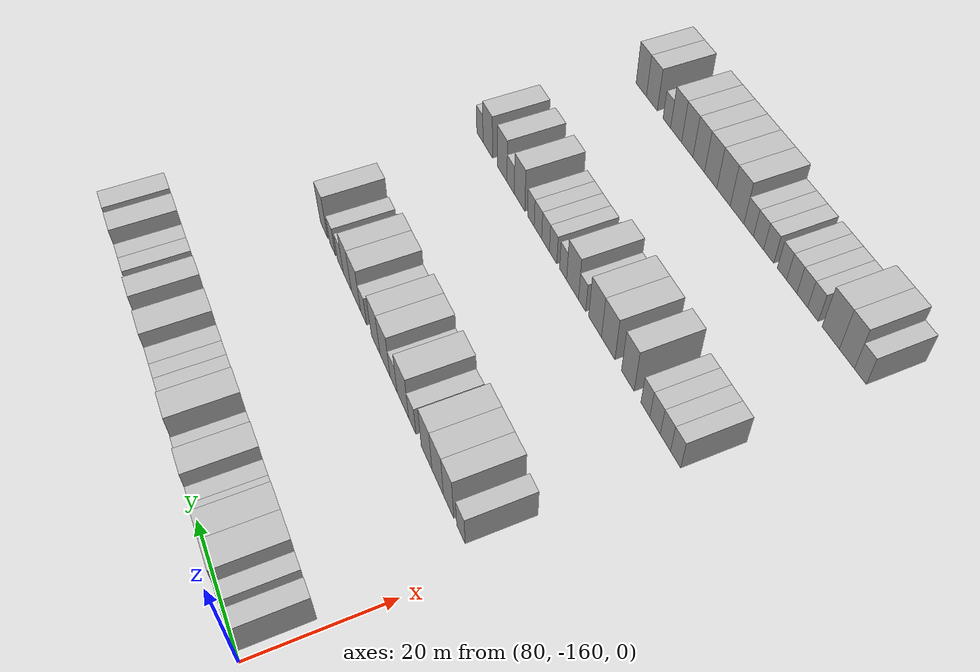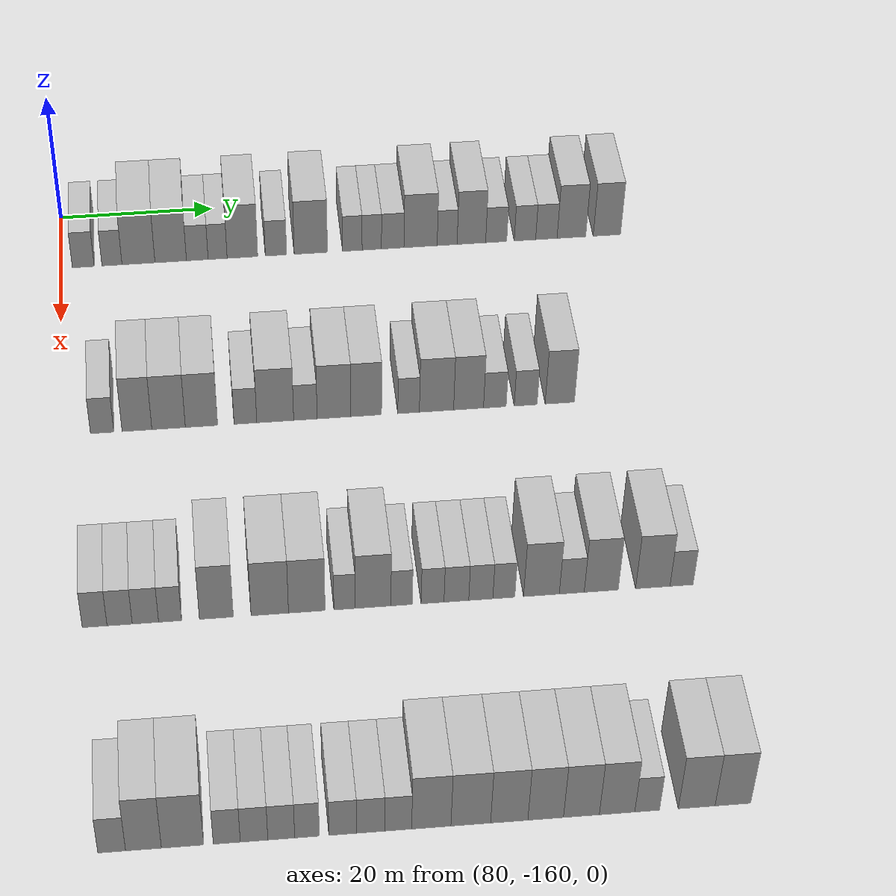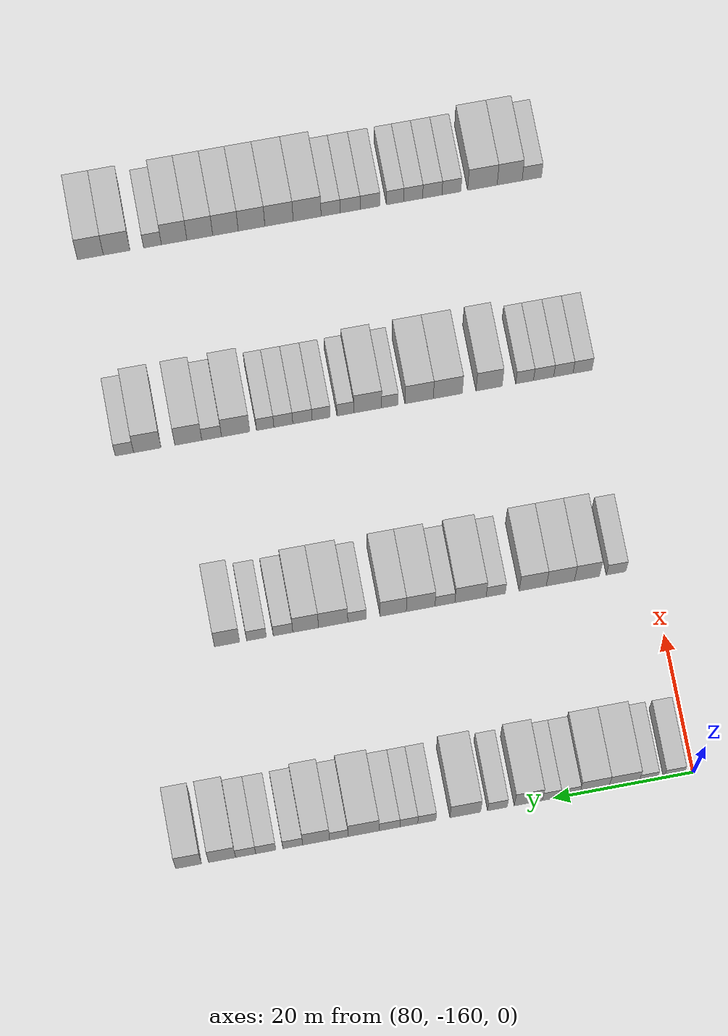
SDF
<sdf version="1.6">
 <world name="default">
  <model name="building_536">
   <static>1</static>
   <pose>85.0000 -157.1456 0 0.000000 0.000000 0.000000</pose>
   <link name="link">
    <pose>0 0 3.00 0 0 0</pose>
    <collision name="collision"><geometry><box><size>10.0000 2.8331 6.0000</size></box></geometry></collision>
    <visual name="visual">
     <cast_shadows>0</cast_shadows>
     <geometry><box><size>10.0000 2.8331 6.0000</size></box></geometry>
     <material>
      <script>
       <uri>model://HANNAS_wall/materials/scripts</uri>
       <uri>model://HANNAS_wall/materials/textures</uri>
       <name>vrc/HANNAS_wall</name>
      </script>
     </material>
    </visual>
   </link>
  </model>
  <model name="building_537">
   <static>1</static>
   <pose>85.0000 -153.4284 0 0.000000 0.000000 0.000000</pose>
   <link name="link">
    <pose>0 0 3.00 0 0 0</pose>
    <collision name="collision"><geometry><box><size>10.0000 2.6014 6.0000</size></box></geometry></collision>
    <visual name="visual">
     <cast_shadows>0</cast_shadows>
     <geometry><box><size>10.0000 2.6014 6.0000</size></box></geometry>
     <material>
      <script>
       <uri>model://HANNAS_wall/materials/scripts</uri>
       <uri>model://HANNAS_wall/materials/textures</uri>
       <name>vrc/HANNAS_wall</name>
      </script>
     </material>
    </visual>
   </link>
  </model>
  <model name="building_538">
   <static>1</static>
   <pose>85.0000 -149.9869 0 0.000000 0.000000 0.000000</pose>
   <link name="link">
    <pose>0 0 4.50 0 0 0</pose>
    <collision name="collision"><geometry><box><size>10.0000 4.2815 9.0000</size></box></geometry></collision>
    <visual name="visual">
     <cast_shadows>0</cast_shadows>
     <geometry><box><size>10.0000 4.2815 9.0000</size></box></geometry>
     <material>
      <script>
       <uri>model://HANNAS_wall/materials/scripts</uri>
       <uri>model://HANNAS_wall/materials/textures</uri>
       <name>vrc/HANNAS_wall</name>
      </script>
     </material>
    </visual>
   </link>
  </model>
  <model name="building_539">
   <static>1</static>
   <pose>85.0000 -145.7979 0 0.000000 0.000000 0.000000</pose>
   <link name="link">
    <pose>0 0 4.50 0 0 0</pose>
    <collision name="collision"><geometry><box><size>10.0000 4.0966 9.0000</size></box></geometry></collision>
    <visual name="visual">
     <cast_shadows>0</cast_shadows>
     <geometry><box><size>10.0000 4.0966 9.0000</size></box></geometry>
     <material>
      <script>
       <uri>model://HANNAS_wall/materials/scripts</uri>
       <uri>model://HANNAS_wall/materials/textures</uri>
       <name>vrc/HANNAS_wall</name>
      </script>
     </material>
    </visual>
   </link>
  </model>
  <model name="building_540">
   <static>1</static>
   <pose>85.0000 -142.3402 0 0.000000 0.000000 0.000000</pose>
   <link name="link">
    <pose>0 0 3.00 0 0 0</pose>
    <collision name="collision"><geometry><box><size>10.0000 2.8188 6.0000</size></box></geometry></collision>
    <visual name="visual">
     <cast_shadows>0</cast_shadows>
     <geometry><box><size>10.0000 2.8188 6.0000</size></box></geometry>
     <material>
      <script>
       <uri>model://HANNAS_wall/materials/scripts</uri>
       <uri>model://HANNAS_wall/materials/textures</uri>
       <name>vrc/HANNAS_wall</name>
      </script>
     </material>
    </visual>
   </link>
  </model>
  <model name="building_541">
   <static>1</static>
   <pose>85.0000 -139.6910 0 0.000000 0.000000 0.000000</pose>
   <link name="link">
    <pose>0 0 3.00 0 0 0</pose>
    <collision name="collision"><geometry><box><size>10.0000 2.4795 6.0000</size></box></geometry></collision>
    <visual name="visual">
     <cast_shadows>0</cast_shadows>
     <geometry><box><size>10.0000 2.4795 6.0000</size></box></geometry>
     <material>
      <script>
       <uri>model://HANNAS_wall/materials/scripts</uri>
       <uri>model://HANNAS_wall/materials/textures</uri>
       <name>vrc/HANNAS_wall</name>
      </script>
     </material>
    </visual>
   </link>
  </model>
  <model name="building_542">
   <static>1</static>
   <pose>85.0000 -136.4554 0 0.000000 0.000000 0.000000</pose>
   <link name="link">
    <pose>0 0 4.50 0 0 0</pose>
    <collision name="collision"><geometry><box><size>10.0000 3.9917 9.0000</size></box></geometry></collision>
    <visual name="visual">
     <cast_shadows>0</cast_shadows>
     <geometry><box><size>10.0000 3.9917 9.0000</size></box></geometry>
     <material>
      <script>
       <uri>model://HANNAS_wall/materials/scripts</uri>
       <uri>model://HANNAS_wall/materials/textures</uri>
       <name>vrc/HANNAS_wall</name>
      </script>
     </material>
    </visual>
   </link>
  </model>
  <model name="building_543">
   <static>1</static>
   <pose>85.0000 -132.0714 0 0.000000 0.000000 0.000000</pose>
   <link name="link">
    <pose>0 0 3.00 0 0 0</pose>
    <collision name="collision"><geometry><box><size>10.0000 2.7764 6.0000</size></box></geometry></collision>
    <visual name="visual">
     <cast_shadows>0</cast_shadows>
     <geometry><box><size>10.0000 2.7764 6.0000</size></box></geometry>
     <material>
      <script>
       <uri>model://HANNAS_wall/materials/scripts</uri>
       <uri>model://HANNAS_wall/materials/textures</uri>
       <name>vrc/HANNAS_wall</name>
      </script>
     </material>
    </visual>
   </link>
  </model>
  <model name="building_544">
   <static>1</static>
   <pose>85.0000 -127.5112 0 0.000000 0.000000 0.000000</pose>
   <link name="link">
    <pose>0 0 4.50 0 0 0</pose>
    <collision name="collision"><geometry><box><size>10.0000 4.3439 9.0000</size></box></geometry></collision>
    <visual name="visual">
     <cast_shadows>0</cast_shadows>
     <geometry><box><size>10.0000 4.3439 9.0000</size></box></geometry>
     <material>
      <script>
       <uri>model://HANNAS_wall/materials/scripts</uri>
       <uri>model://HANNAS_wall/materials/textures</uri>
       <name>vrc/HANNAS_wall</name>
      </script>
     </material>
    </visual>
   </link>
  </model>
  <model name="building_545">
   <static>1</static>
   <pose>85.0000 -122.0575 0 0.000000 0.000000 0.000000</pose>
   <link name="link">
    <pose>0 0 3.00 0 0 0</pose>
    <collision name="collision"><geometry><box><size>10.0000 2.5634 6.0000</size></box></geometry></collision>
    <visual name="visual">
     <cast_shadows>0</cast_shadows>
     <geometry><box><size>10.0000 2.5634 6.0000</size></box></geometry>
     <material>
      <script>
       <uri>model://HANNAS_wall/materials/scripts</uri>
       <uri>model://HANNAS_wall/materials/textures</uri>
       <name>vrc/HANNAS_wall</name>
      </script>
     </material>
    </visual>
   </link>
  </model>
  <model name="building_546">
   <static>1</static>
   <pose>85.0000 -119.5064 0 0.000000 0.000000 0.000000</pose>
   <link name="link">
    <pose>0 0 3.00 0 0 0</pose>
    <collision name="collision"><geometry><box><size>10.0000 2.5390 6.0000</size></box></geometry></collision>
    <visual name="visual">
     <cast_shadows>0</cast_shadows>
     <geometry><box><size>10.0000 2.5390 6.0000</size></box></geometry>
     <material>
      <script>
       <uri>model://HANNAS_wall/materials/scripts</uri>
       <uri>model://HANNAS_wall/materials/textures</uri>
       <name>vrc/HANNAS_wall</name>
      </script>
     </material>
    </visual>
   </link>
  </model>
  <model name="building_547">
   <static>1</static>
   <pose>85.0000 -116.7574 0 0.000000 0.000000 0.000000</pose>
   <link name="link">
    <pose>0 0 3.00 0 0 0</pose>
    <collision name="collision"><geometry><box><size>10.0000 2.9590 6.0000</size></box></geometry></collision>
    <visual name="visual">
     <cast_shadows>0</cast_shadows>
     <geometry><box><size>10.0000 2.9590 6.0000</size></box></geometry>
     <material>
      <script>
       <uri>model://HANNAS_wall/materials/scripts</uri>
       <uri>model://HANNAS_wall/materials/textures</uri>
       <name>vrc/HANNAS_wall</name>
      </script>
     </material>
    </visual>
   </link>
  </model>
  <model name="building_548">
   <static>1</static>
   <pose>85.0000 -113.0890 0 0.000000 0.000000 0.000000</pose>
   <link name="link">
    <pose>0 0 4.50 0 0 0</pose>
    <collision name="collision"><geometry><box><size>10.0000 4.3778 9.0000</size></box></geometry></collision>
    <visual name="visual">
     <cast_shadows>0</cast_shadows>
     <geometry><box><size>10.0000 4.3778 9.0000</size></box></geometry>
     <material>
      <script>
       <uri>model://HANNAS_wall/materials/scripts</uri>
       <uri>model://HANNAS_wall/materials/textures</uri>
       <name>vrc/HANNAS_wall</name>
      </script>
     </material>
    </visual>
   </link>
  </model>
  <model name="building_549">
   <static>1</static>
   <pose>85.0000 -109.5855 0 0.000000 0.000000 0.000000</pose>
   <link name="link">
    <pose>0 0 3.00 0 0 0</pose>
    <collision name="collision"><geometry><box><size>10.0000 2.6292 6.0000</size></box></geometry></collision>
    <visual name="visual">
     <cast_shadows>0</cast_shadows>
     <geometry><box><size>10.0000 2.6292 6.0000</size></box></geometry>
     <material>
      <script>
       <uri>model://HANNAS_wall/materials/scripts</uri>
       <uri>model://HANNAS_wall/materials/textures</uri>
       <name>vrc/HANNAS_wall</name>
      </script>
     </material>
    </visual>
   </link>
  </model>
  <model name="building_550">
   <static>1</static>
   <pose>85.0000 -106.3817 0 0.000000 0.000000 0.000000</pose>
   <link name="link">
    <pose>0 0 4.50 0 0 0</pose>
    <collision name="collision"><geometry><box><size>10.0000 3.7782 9.0000</size></box></geometry></collision>
    <visual name="visual">
     <cast_shadows>0</cast_shadows>
     <geometry><box><size>10.0000 3.7782 9.0000</size></box></geometry>
     <material>
      <script>
       <uri>model://HANNAS_wall/materials/scripts</uri>
       <uri>model://HANNAS_wall/materials/textures</uri>
       <name>vrc/HANNAS_wall</name>
      </script>
     </material>
    </visual>
   </link>
  </model>
  <model name="building_551">
   <static>1</static>
   <pose>85.0000 -103.0970 0 0.000000 0.000000 0.000000</pose>
   <link name="link">
    <pose>0 0 3.00 0 0 0</pose>
    <collision name="collision"><geometry><box><size>10.0000 2.7912 6.0000</size></box></geometry></collision>
    <visual name="visual">
     <cast_shadows>0</cast_shadows>
     <geometry><box><size>10.0000 2.7912 6.0000</size></box></geometry>
     <material>
      <script>
       <uri>model://HANNAS_wall/materials/scripts</uri>
       <uri>model://HANNAS_wall/materials/textures</uri>
       <name>vrc/HANNAS_wall</name>
      </script>
     </material>
    </visual>
   </link>
  </model>
  <model name="building_552">
   <static>1</static>
   <pose>85.0000 -99.2814 0 0.000000 0.000000 0.000000</pose>
   <link name="link">
    <pose>0 0 3.00 0 0 0</pose>
    <collision name="collision"><geometry><box><size>10.0000 2.8399 6.0000</size></box></geometry></collision>
    <visual name="visual">
     <cast_shadows>0</cast_shadows>
     <geometry><box><size>10.0000 2.8399 6.0000</size></box></geometry>
     <material>
      <script>
       <uri>model://HANNAS_wall/materials/scripts</uri>
       <uri>model://HANNAS_wall/materials/textures</uri>
       <name>vrc/HANNAS_wall</name>
      </script>
     </material>
    </visual>
   </link>
  </model>
  <model name="building_553">
   <static>1</static>
   <pose>85.0000 -96.4406 0 0.000000 0.000000 0.000000</pose>
   <link name="link">
    <pose>0 0 3.00 0 0 0</pose>
    <collision name="collision"><geometry><box><size>10.0000 2.8418 6.0000</size></box></geometry></collision>
    <visual name="visual">
     <cast_shadows>0</cast_shadows>
     <geometry><box><size>10.0000 2.8418 6.0000</size></box></geometry>
     <material>
      <script>
       <uri>model://HANNAS_wall/materials/scripts</uri>
       <uri>model://HANNAS_wall/materials/textures</uri>
       <name>vrc/HANNAS_wall</name>
      </script>
     </material>
    </visual>
   </link>
  </model>
  <model name="building_554">
   <static>1</static>
   <pose>85.0000 -93.1189 0 0.000000 0.000000 0.000000</pose>
   <link name="link">
    <pose>0 0 4.50 0 0 0</pose>
    <collision name="collision"><geometry><box><size>10.0000 3.8016 9.0000</size></box></geometry></collision>
    <visual name="visual">
     <cast_shadows>0</cast_shadows>
     <geometry><box><size>10.0000 3.8016 9.0000</size></box></geometry>
     <material>
      <script>
       <uri>model://HANNAS_wall/materials/scripts</uri>
       <uri>model://HANNAS_wall/materials/textures</uri>
       <name>vrc/HANNAS_wall</name>
      </script>
     </material>
    </visual>
   </link>
  </model>
  <model name="building_555">
   <static>1</static>
   <pose>85.0000 -88.4047 0 0.000000 0.000000 0.000000</pose>
   <link name="link">
    <pose>0 0 4.50 0 0 0</pose>
    <collision name="collision"><geometry><box><size>10.0000 3.6267 9.0000</size></box></geometry></collision>
    <visual name="visual">
     <cast_shadows>0</cast_shadows>
     <geometry><box><size>10.0000 3.6267 9.0000</size></box></geometry>
     <material>
      <script>
       <uri>model://HANNAS_wall/materials/scripts</uri>
       <uri>model://HANNAS_wall/materials/textures</uri>
       <name>vrc/HANNAS_wall</name>
      </script>
     </material>
    </visual>
   </link>
  </model>
  <model name="building_767">
   <static>1</static>
   <pose>115.0000 -155.0605 0 0.000000 0.000000 0.000000</pose>
   <link name="link">
    <pose>0 0 3.00 0 0 0</pose>
    <collision name="collision"><geometry><box><size>10.0000 2.8211 6.0000</size></box></geometry></collision>
    <visual name="visual">
     <cast_shadows>0</cast_shadows>
     <geometry><box><size>10.0000 2.8211 6.0000</size></box></geometry>
     <material>
      <script>
       <uri>model://HANNAS_wall/materials/scripts</uri>
       <uri>model://HANNAS_wall/materials/textures</uri>
       <name>vrc/HANNAS_wall</name>
      </script>
     </material>
    </visual>
   </link>
  </model>
  <model name="building_768">
   <static>1</static>
   <pose>115.0000 -150.8488 0 0.000000 0.000000 0.000000</pose>
   <link name="link">
    <pose>0 0 4.50 0 0 0</pose>
    <collision name="collision"><geometry><box><size>10.0000 3.6022 9.0000</size></box></geometry></collision>
    <visual name="visual">
     <cast_shadows>0</cast_shadows>
     <geometry><box><size>10.0000 3.6022 9.0000</size></box></geometry>
     <material>
      <script>
       <uri>model://HANNAS_wall/materials/scripts</uri>
       <uri>model://HANNAS_wall/materials/textures</uri>
       <name>vrc/HANNAS_wall</name>
      </script>
     </material>
    </visual>
   </link>
  </model>
  <model name="building_769">
   <static>1</static>
   <pose>115.0000 -147.0198 0 0.000000 0.000000 0.000000</pose>
   <link name="link">
    <pose>0 0 4.50 0 0 0</pose>
    <collision name="collision"><geometry><box><size>10.0000 4.0558 9.0000</size></box></geometry></collision>
    <visual name="visual">
     <cast_shadows>0</cast_shadows>
     <geometry><box><size>10.0000 4.0558 9.0000</size></box></geometry>
     <material>
      <script>
       <uri>model://HANNAS_wall/materials/scripts</uri>
       <uri>model://HANNAS_wall/materials/textures</uri>
       <name>vrc/HANNAS_wall</name>
      </script>
     </material>
    </visual>
   </link>
  </model>
  <model name="building_770">
   <static>1</static>
   <pose>115.0000 -143.0329 0 0.000000 0.000000 0.000000</pose>
   <link name="link">
    <pose>0 0 4.50 0 0 0</pose>
    <collision name="collision"><geometry><box><size>10.0000 3.9180 9.0000</size></box></geometry></collision>
    <visual name="visual">
     <cast_shadows>0</cast_shadows>
     <geometry><box><size>10.0000 3.9180 9.0000</size></box></geometry>
     <material>
      <script>
       <uri>model://HANNAS_wall/materials/scripts</uri>
       <uri>model://HANNAS_wall/materials/textures</uri>
       <name>vrc/HANNAS_wall</name>
      </script>
     </material>
    </visual>
   </link>
  </model>
  <model name="building_771">
   <static>1</static>
   <pose>115.0000 -137.6926 0 0.000000 0.000000 0.000000</pose>
   <link name="link">
    <pose>0 0 3.00 0 0 0</pose>
    <collision name="collision"><geometry><box><size>10.0000 2.7628 6.0000</size></box></geometry></collision>
    <visual name="visual">
     <cast_shadows>0</cast_shadows>
     <geometry><box><size>10.0000 2.7628 6.0000</size></box></geometry>
     <material>
      <script>
       <uri>model://HANNAS_wall/materials/scripts</uri>
       <uri>model://HANNAS_wall/materials/textures</uri>
       <name>vrc/HANNAS_wall</name>
      </script>
     </material>
    </visual>
   </link>
  </model>
  <model name="building_772">
   <static>1</static>
   <pose>115.0000 -134.0648 0 0.000000 0.000000 0.000000</pose>
   <link name="link">
    <pose>0 0 4.50 0 0 0</pose>
    <collision name="collision"><geometry><box><size>10.0000 4.4926 9.0000</size></box></geometry></collision>
    <visual name="visual">
     <cast_shadows>0</cast_shadows>
     <geometry><box><size>10.0000 4.4926 9.0000</size></box></geometry>
     <material>
      <script>
       <uri>model://HANNAS_wall/materials/scripts</uri>
       <uri>model://HANNAS_wall/materials/textures</uri>
       <name>vrc/HANNAS_wall</name>
      </script>
     </material>
    </visual>
   </link>
  </model>
  <model name="building_773">
   <static>1</static>
   <pose>115.0000 -130.3889 0 0.000000 0.000000 0.000000</pose>
   <link name="link">
    <pose>0 0 3.00 0 0 0</pose>
    <collision name="collision"><geometry><box><size>10.0000 2.8594 6.0000</size></box></geometry></collision>
    <visual name="visual">
     <cast_shadows>0</cast_shadows>
     <geometry><box><size>10.0000 2.8594 6.0000</size></box></geometry>
     <material>
      <script>
       <uri>model://HANNAS_wall/materials/scripts</uri>
       <uri>model://HANNAS_wall/materials/textures</uri>
       <name>vrc/HANNAS_wall</name>
      </script>
     </material>
    </visual>
   </link>
  </model>
  <model name="building_774">
   <static>1</static>
   <pose>115.0000 -126.8969 0 0.000000 0.000000 0.000000</pose>
   <link name="link">
    <pose>0 0 4.50 0 0 0</pose>
    <collision name="collision"><geometry><box><size>10.0000 4.1246 9.0000</size></box></geometry></collision>
    <visual name="visual">
     <cast_shadows>0</cast_shadows>
     <geometry><box><size>10.0000 4.1246 9.0000</size></box></geometry>
     <material>
      <script>
       <uri>model://HANNAS_wall/materials/scripts</uri>
       <uri>model://HANNAS_wall/materials/textures</uri>
       <name>vrc/HANNAS_wall</name>
      </script>
     </material>
    </visual>
   </link>
  </model>
  <model name="building_775">
   <static>1</static>
   <pose>115.0000 -122.9571 0 0.000000 0.000000 0.000000</pose>
   <link name="link">
    <pose>0 0 4.50 0 0 0</pose>
    <collision name="collision"><geometry><box><size>10.0000 3.7551 9.0000</size></box></geometry></collision>
    <visual name="visual">
     <cast_shadows>0</cast_shadows>
     <geometry><box><size>10.0000 3.7551 9.0000</size></box></geometry>
     <material>
      <script>
       <uri>model://HANNAS_wall/materials/scripts</uri>
       <uri>model://HANNAS_wall/materials/textures</uri>
       <name>vrc/HANNAS_wall</name>
      </script>
     </material>
    </visual>
   </link>
  </model>
  <model name="building_776">
   <static>1</static>
   <pose>115.0000 -117.7566 0 0.000000 0.000000 0.000000</pose>
   <link name="link">
    <pose>0 0 3.00 0 0 0</pose>
    <collision name="collision"><geometry><box><size>10.0000 2.6460 6.0000</size></box></geometry></collision>
    <visual name="visual">
     <cast_shadows>0</cast_shadows>
     <geometry><box><size>10.0000 2.6460 6.0000</size></box></geometry>
     <material>
      <script>
       <uri>model://HANNAS_wall/materials/scripts</uri>
       <uri>model://HANNAS_wall/materials/textures</uri>
       <name>vrc/HANNAS_wall</name>
      </script>
     </material>
    </visual>
   </link>
  </model>
  <model name="building_777">
   <static>1</static>
   <pose>115.0000 -114.3291 0 0.000000 0.000000 0.000000</pose>
   <link name="link">
    <pose>0 0 4.50 0 0 0</pose>
    <collision name="collision"><geometry><box><size>10.0000 4.2089 9.0000</size></box></geometry></collision>
    <visual name="visual">
     <cast_shadows>0</cast_shadows>
     <geometry><box><size>10.0000 4.2089 9.0000</size></box></geometry>
     <material>
      <script>
       <uri>model://HANNAS_wall/materials/scripts</uri>
       <uri>model://HANNAS_wall/materials/textures</uri>
       <name>vrc/HANNAS_wall</name>
      </script>
     </material>
    </visual>
   </link>
  </model>
  <model name="building_778">
   <static>1</static>
   <pose>115.0000 -110.3850 0 0.000000 0.000000 0.000000</pose>
   <link name="link">
    <pose>0 0 4.50 0 0 0</pose>
    <collision name="collision"><geometry><box><size>10.0000 3.6794 9.0000</size></box></geometry></collision>
    <visual name="visual">
     <cast_shadows>0</cast_shadows>
     <geometry><box><size>10.0000 3.6794 9.0000</size></box></geometry>
     <material>
      <script>
       <uri>model://HANNAS_wall/materials/scripts</uri>
       <uri>model://HANNAS_wall/materials/textures</uri>
       <name>vrc/HANNAS_wall</name>
      </script>
     </material>
    </visual>
   </link>
  </model>
  <model name="building_779">
   <static>1</static>
   <pose>115.0000 -107.1488 0 0.000000 0.000000 0.000000</pose>
   <link name="link">
    <pose>0 0 3.00 0 0 0</pose>
    <collision name="collision"><geometry><box><size>10.0000 2.7929 6.0000</size></box></geometry></collision>
    <visual name="visual">
     <cast_shadows>0</cast_shadows>
     <geometry><box><size>10.0000 2.7929 6.0000</size></box></geometry>
     <material>
      <script>
       <uri>model://HANNAS_wall/materials/scripts</uri>
       <uri>model://HANNAS_wall/materials/textures</uri>
       <name>vrc/HANNAS_wall</name>
      </script>
     </material>
    </visual>
   </link>
  </model>
  <model name="building_780">
   <static>1</static>
   <pose>115.0000 -103.3423 0 0.000000 0.000000 0.000000</pose>
   <link name="link">
    <pose>0 0 3.00 0 0 0</pose>
    <collision name="collision"><geometry><box><size>10.0000 2.8201 6.0000</size></box></geometry></collision>
    <visual name="visual">
     <cast_shadows>0</cast_shadows>
     <geometry><box><size>10.0000 2.8201 6.0000</size></box></geometry>
     <material>
      <script>
       <uri>model://HANNAS_wall/materials/scripts</uri>
       <uri>model://HANNAS_wall/materials/textures</uri>
       <name>vrc/HANNAS_wall</name>
      </script>
     </material>
    </visual>
   </link>
  </model>
  <model name="building_781">
   <static>1</static>
   <pose>115.0000 -99.1244 0 0.000000 0.000000 0.000000</pose>
   <link name="link">
    <pose>0 0 4.50 0 0 0</pose>
    <collision name="collision"><geometry><box><size>10.0000 3.6155 9.0000</size></box></geometry></collision>
    <visual name="visual">
     <cast_shadows>0</cast_shadows>
     <geometry><box><size>10.0000 3.6155 9.0000</size></box></geometry>
     <material>
      <script>
       <uri>model://HANNAS_wall/materials/scripts</uri>
       <uri>model://HANNAS_wall/materials/textures</uri>
       <name>vrc/HANNAS_wall</name>
      </script>
     </material>
    </visual>
   </link>
  </model>
  <model name="building_997">
   <static>1</static>
   <pose>145.0000 -156.2630 0 0.000000 0.000000 0.000000</pose>
   <link name="link">
    <pose>0 0 3.00 0 0 0</pose>
    <collision name="collision"><geometry><box><size>10.0000 2.7744 6.0000</size></box></geometry></collision>
    <visual name="visual">
     <cast_shadows>0</cast_shadows>
     <geometry><box><size>10.0000 2.7744 6.0000</size></box></geometry>
     <material>
      <script>
       <uri>model://HANNAS_wall/materials/scripts</uri>
       <uri>model://HANNAS_wall/materials/textures</uri>
       <name>vrc/HANNAS_wall</name>
      </script>
     </material>
    </visual>
   </link>
  </model>
  <model name="building_998">
   <static>1</static>
   <pose>145.0000 -153.4623 0 0.000000 0.000000 0.000000</pose>
   <link name="link">
    <pose>0 0 3.00 0 0 0</pose>
    <collision name="collision"><geometry><box><size>10.0000 2.8270 6.0000</size></box></geometry></collision>
    <visual name="visual">
     <cast_shadows>0</cast_shadows>
     <geometry><box><size>10.0000 2.8270 6.0000</size></box></geometry>
     <material>
      <script>
       <uri>model://HANNAS_wall/materials/scripts</uri>
       <uri>model://HANNAS_wall/materials/textures</uri>
       <name>vrc/HANNAS_wall</name>
      </script>
     </material>
    </visual>
   </link>
  </model>
  <model name="building_999">
   <static>1</static>
   <pose>145.0000 -150.5714 0 0.000000 0.000000 0.000000</pose>
   <link name="link">
    <pose>0 0 3.00 0 0 0</pose>
    <collision name="collision"><geometry><box><size>10.0000 2.9547 6.0000</size></box></geometry></collision>
    <visual name="visual">
     <cast_shadows>0</cast_shadows>
     <geometry><box><size>10.0000 2.9547 6.0000</size></box></geometry>
     <material>
      <script>
       <uri>model://HANNAS_wall/materials/scripts</uri>
       <uri>model://HANNAS_wall/materials/textures</uri>
       <name>vrc/HANNAS_wall</name>
      </script>
     </material>
    </visual>
   </link>
  </model>
  <model name="building_1000">
   <static>1</static>
   <pose>145.0000 -147.7999 0 0.000000 0.000000 0.000000</pose>
   <link name="link">
    <pose>0 0 3.00 0 0 0</pose>
    <collision name="collision"><geometry><box><size>10.0000 2.5882 6.0000</size></box></geometry></collision>
    <visual name="visual">
     <cast_shadows>0</cast_shadows>
     <geometry><box><size>10.0000 2.5882 6.0000</size></box></geometry>
     <material>
      <script>
       <uri>model://HANNAS_wall/materials/scripts</uri>
       <uri>model://HANNAS_wall/materials/textures</uri>
       <name>vrc/HANNAS_wall</name>
      </script>
     </material>
    </visual>
   </link>
  </model>
  <model name="building_1001">
   <static>1</static>
   <pose>145.0000 -142.5974 0 0.000000 0.000000 0.000000</pose>
   <link name="link">
    <pose>0 0 4.50 0 0 0</pose>
    <collision name="collision"><geometry><box><size>10.0000 3.8169 9.0000</size></box></geometry></collision>
    <visual name="visual">
     <cast_shadows>0</cast_shadows>
     <geometry><box><size>10.0000 3.8169 9.0000</size></box></geometry>
     <material>
      <script>
       <uri>model://HANNAS_wall/materials/scripts</uri>
       <uri>model://HANNAS_wall/materials/textures</uri>
       <name>vrc/HANNAS_wall</name>
      </script>
     </material>
    </visual>
   </link>
  </model>
  <model name="building_1002">
   <static>1</static>
   <pose>145.0000 -136.5759 0 0.000000 0.000000 0.000000</pose>
   <link name="link">
    <pose>0 0 4.50 0 0 0</pose>
    <collision name="collision"><geometry><box><size>10.0000 4.2261 9.0000</size></box></geometry></collision>
    <visual name="visual">
     <cast_shadows>0</cast_shadows>
     <geometry><box><size>10.0000 4.2261 9.0000</size></box></geometry>
     <material>
      <script>
       <uri>model://HANNAS_wall/materials/scripts</uri>
       <uri>model://HANNAS_wall/materials/textures</uri>
       <name>vrc/HANNAS_wall</name>
      </script>
     </material>
    </visual>
   </link>
  </model>
  <model name="building_1003">
   <static>1</static>
   <pose>145.0000 -132.3949 0 0.000000 0.000000 0.000000</pose>
   <link name="link">
    <pose>0 0 4.50 0 0 0</pose>
    <collision name="collision"><geometry><box><size>10.0000 4.1358 9.0000</size></box></geometry></collision>
    <visual name="visual">
     <cast_shadows>0</cast_shadows>
     <geometry><box><size>10.0000 4.1358 9.0000</size></box></geometry>
     <material>
      <script>
       <uri>model://HANNAS_wall/materials/scripts</uri>
       <uri>model://HANNAS_wall/materials/textures</uri>
       <name>vrc/HANNAS_wall</name>
      </script>
     </material>
    </visual>
   </link>
  </model>
  <model name="building_1004">
   <static>1</static>
   <pose>145.0000 -128.1258 0 0.000000 0.000000 0.000000</pose>
   <link name="link">
    <pose>0 0 3.00 0 0 0</pose>
    <collision name="collision"><geometry><box><size>10.0000 2.4025 6.0000</size></box></geometry></collision>
    <visual name="visual">
     <cast_shadows>0</cast_shadows>
     <geometry><box><size>10.0000 2.4025 6.0000</size></box></geometry>
     <material>
      <script>
       <uri>model://HANNAS_wall/materials/scripts</uri>
       <uri>model://HANNAS_wall/materials/textures</uri>
       <name>vrc/HANNAS_wall</name>
      </script>
     </material>
    </visual>
   </link>
  </model>
  <model name="building_1005">
   <static>1</static>
   <pose>145.0000 -124.8946 0 0.000000 0.000000 0.000000</pose>
   <link name="link">
    <pose>0 0 4.50 0 0 0</pose>
    <collision name="collision"><geometry><box><size>10.0000 4.0600 9.0000</size></box></geometry></collision>
    <visual name="visual">
     <cast_shadows>0</cast_shadows>
     <geometry><box><size>10.0000 4.0600 9.0000</size></box></geometry>
     <material>
      <script>
       <uri>model://HANNAS_wall/materials/scripts</uri>
       <uri>model://HANNAS_wall/materials/textures</uri>
       <name>vrc/HANNAS_wall</name>
      </script>
     </material>
    </visual>
   </link>
  </model>
  <model name="building_1006">
   <static>1</static>
   <pose>145.0000 -121.6473 0 0.000000 0.000000 0.000000</pose>
   <link name="link">
    <pose>0 0 3.00 0 0 0</pose>
    <collision name="collision"><geometry><box><size>10.0000 2.4345 6.0000</size></box></geometry></collision>
    <visual name="visual">
     <cast_shadows>0</cast_shadows>
     <geometry><box><size>10.0000 2.4345 6.0000</size></box></geometry>
     <material>
      <script>
       <uri>model://HANNAS_wall/materials/scripts</uri>
       <uri>model://HANNAS_wall/materials/textures</uri>
       <name>vrc/HANNAS_wall</name>
      </script>
     </material>
    </visual>
   </link>
  </model>
  <model name="building_1007">
   <static>1</static>
   <pose>145.0000 -118.1245 0 0.000000 0.000000 0.000000</pose>
   <link name="link">
    <pose>0 0 3.00 0 0 0</pose>
    <collision name="collision"><geometry><box><size>10.0000 2.6112 6.0000</size></box></geometry></collision>
    <visual name="visual">
     <cast_shadows>0</cast_shadows>
     <geometry><box><size>10.0000 2.6112 6.0000</size></box></geometry>
     <material>
      <script>
       <uri>model://HANNAS_wall/materials/scripts</uri>
       <uri>model://HANNAS_wall/materials/textures</uri>
       <name>vrc/HANNAS_wall</name>
      </script>
     </material>
    </visual>
   </link>
  </model>
  <model name="building_1008">
   <static>1</static>
   <pose>145.0000 -115.4090 0 0.000000 0.000000 0.000000</pose>
   <link name="link">
    <pose>0 0 3.00 0 0 0</pose>
    <collision name="collision"><geometry><box><size>10.0000 2.8197 6.0000</size></box></geometry></collision>
    <visual name="visual">
     <cast_shadows>0</cast_shadows>
     <geometry><box><size>10.0000 2.8197 6.0000</size></box></geometry>
     <material>
      <script>
       <uri>model://HANNAS_wall/materials/scripts</uri>
       <uri>model://HANNAS_wall/materials/textures</uri>
       <name>vrc/HANNAS_wall</name>
      </script>
     </material>
    </visual>
   </link>
  </model>
  <model name="building_1009">
   <static>1</static>
   <pose>145.0000 -112.6225 0 0.000000 0.000000 0.000000</pose>
   <link name="link">
    <pose>0 0 3.00 0 0 0</pose>
    <collision name="collision"><geometry><box><size>10.0000 2.7532 6.0000</size></box></geometry></collision>
    <visual name="visual">
     <cast_shadows>0</cast_shadows>
     <geometry><box><size>10.0000 2.7532 6.0000</size></box></geometry>
     <material>
      <script>
       <uri>model://HANNAS_wall/materials/scripts</uri>
       <uri>model://HANNAS_wall/materials/textures</uri>
       <name>vrc/HANNAS_wall</name>
      </script>
     </material>
    </visual>
   </link>
  </model>
  <model name="building_1010">
   <static>1</static>
   <pose>145.0000 -109.9885 0 0.000000 0.000000 0.000000</pose>
   <link name="link">
    <pose>0 0 3.00 0 0 0</pose>
    <collision name="collision"><geometry><box><size>10.0000 2.5148 6.0000</size></box></geometry></collision>
    <visual name="visual">
     <cast_shadows>0</cast_shadows>
     <geometry><box><size>10.0000 2.5148 6.0000</size></box></geometry>
     <material>
      <script>
       <uri>model://HANNAS_wall/materials/scripts</uri>
       <uri>model://HANNAS_wall/materials/textures</uri>
       <name>vrc/HANNAS_wall</name>
      </script>
     </material>
    </visual>
   </link>
  </model>
  <model name="building_1011">
   <static>1</static>
   <pose>145.0000 -105.6838 0 0.000000 0.000000 0.000000</pose>
   <link name="link">
    <pose>0 0 4.50 0 0 0</pose>
    <collision name="collision"><geometry><box><size>10.0000 4.0946 9.0000</size></box></geometry></collision>
    <visual name="visual">
     <cast_shadows>0</cast_shadows>
     <geometry><box><size>10.0000 4.0946 9.0000</size></box></geometry>
     <material>
      <script>
       <uri>model://HANNAS_wall/materials/scripts</uri>
       <uri>model://HANNAS_wall/materials/textures</uri>
       <name>vrc/HANNAS_wall</name>
      </script>
     </material>
    </visual>
   </link>
  </model>
  <model name="building_1012">
   <static>1</static>
   <pose>145.0000 -102.2068 0 0.000000 0.000000 0.000000</pose>
   <link name="link">
    <pose>0 0 3.00 0 0 0</pose>
    <collision name="collision"><geometry><box><size>10.0000 2.8594 6.0000</size></box></geometry></collision>
    <visual name="visual">
     <cast_shadows>0</cast_shadows>
     <geometry><box><size>10.0000 2.8594 6.0000</size></box></geometry>
     <material>
      <script>
       <uri>model://HANNAS_wall/materials/scripts</uri>
       <uri>model://HANNAS_wall/materials/textures</uri>
       <name>vrc/HANNAS_wall</name>
      </script>
     </material>
    </visual>
   </link>
  </model>
  <model name="building_1013">
   <static>1</static>
   <pose>145.0000 -98.8252 0 0.000000 0.000000 0.000000</pose>
   <link name="link">
    <pose>0 0 4.50 0 0 0</pose>
    <collision name="collision"><geometry><box><size>10.0000 3.9039 9.0000</size></box></geometry></collision>
    <visual name="visual">
     <cast_shadows>0</cast_shadows>
     <geometry><box><size>10.0000 3.9039 9.0000</size></box></geometry>
     <material>
      <script>
       <uri>model://HANNAS_wall/materials/scripts</uri>
       <uri>model://HANNAS_wall/materials/textures</uri>
       <name>vrc/HANNAS_wall</name>
      </script>
     </material>
    </visual>
   </link>
  </model>
  <model name="building_1014">
   <static>1</static>
   <pose>145.0000 -92.8893 0 0.000000 0.000000 0.000000</pose>
   <link name="link">
    <pose>0 0 4.50 0 0 0</pose>
    <collision name="collision"><geometry><box><size>10.0000 3.9679 9.0000</size></box></geometry></collision>
    <visual name="visual">
     <cast_shadows>0</cast_shadows>
     <geometry><box><size>10.0000 3.9679 9.0000</size></box></geometry>
     <material>
      <script>
       <uri>model://HANNAS_wall/materials/scripts</uri>
       <uri>model://HANNAS_wall/materials/textures</uri>
       <name>vrc/HANNAS_wall</name>
      </script>
     </material>
    </visual>
   </link>
  </model>
  <model name="building_1015">
   <static>1</static>
   <pose>145.0000 -89.5718 0 0.000000 0.000000 0.000000</pose>
   <link name="link">
    <pose>0 0 3.00 0 0 0</pose>
    <collision name="collision"><geometry><box><size>10.0000 2.6671 6.0000</size></box></geometry></collision>
    <visual name="visual">
     <cast_shadows>0</cast_shadows>
     <geometry><box><size>10.0000 2.6671 6.0000</size></box></geometry>
     <material>
      <script>
       <uri>model://HANNAS_wall/materials/scripts</uri>
       <uri>model://HANNAS_wall/materials/textures</uri>
       <name>vrc/HANNAS_wall</name>
      </script>
     </material>
    </visual>
   </link>
  </model>
  <model name="building_1232">
   <static>1</static>
   <pose>175.0000 -154.7936 0 0.000000 0.000000 0.000000</pose>
   <link name="link">
    <pose>0 0 3.00 0 0 0</pose>
    <collision name="collision"><geometry><box><size>10.0000 2.8646 6.0000</size></box></geometry></collision>
    <visual name="visual">
     <cast_shadows>0</cast_shadows>
     <geometry><box><size>10.0000 2.8646 6.0000</size></box></geometry>
     <material>
      <script>
       <uri>model://HANNAS_wall/materials/scripts</uri>
       <uri>model://HANNAS_wall/materials/textures</uri>
       <name>vrc/HANNAS_wall</name>
      </script>
     </material>
    </visual>
   </link>
  </model>
  <model name="building_1233">
   <static>1</static>
   <pose>175.0000 -151.5117 0 0.000000 0.000000 0.000000</pose>
   <link name="link">
    <pose>0 0 4.50 0 0 0</pose>
    <collision name="collision"><geometry><box><size>10.0000 3.6993 9.0000</size></box></geometry></collision>
    <visual name="visual">
     <cast_shadows>0</cast_shadows>
     <geometry><box><size>10.0000 3.6993 9.0000</size></box></geometry>
     <material>
      <script>
       <uri>model://HANNAS_wall/materials/scripts</uri>
       <uri>model://HANNAS_wall/materials/textures</uri>
       <name>vrc/HANNAS_wall</name>
      </script>
     </material>
    </visual>
   </link>
  </model>
  <model name="building_1234">
   <static>1</static>
   <pose>175.0000 -147.4756 0 0.000000 0.000000 0.000000</pose>
   <link name="link">
    <pose>0 0 4.50 0 0 0</pose>
    <collision name="collision"><geometry><box><size>10.0000 4.3730 9.0000</size></box></geometry></collision>
    <visual name="visual">
     <cast_shadows>0</cast_shadows>
     <geometry><box><size>10.0000 4.3730 9.0000</size></box></geometry>
     <material>
      <script>
       <uri>model://HANNAS_wall/materials/scripts</uri>
       <uri>model://HANNAS_wall/materials/textures</uri>
       <name>vrc/HANNAS_wall</name>
      </script>
     </material>
    </visual>
   </link>
  </model>
  <model name="building_1235">
   <static>1</static>
   <pose>175.0000 -142.8895 0 0.000000 0.000000 0.000000</pose>
   <link name="link">
    <pose>0 0 3.00 0 0 0</pose>
    <collision name="collision"><geometry><box><size>10.0000 2.7992 6.0000</size></box></geometry></collision>
    <visual name="visual">
     <cast_shadows>0</cast_shadows>
     <geometry><box><size>10.0000 2.7992 6.0000</size></box></geometry>
     <material>
      <script>
       <uri>model://HANNAS_wall/materials/scripts</uri>
       <uri>model://HANNAS_wall/materials/textures</uri>
       <name>vrc/HANNAS_wall</name>
      </script>
     </material>
    </visual>
   </link>
  </model>
  <model name="building_1236">
   <static>1</static>
   <pose>175.0000 -140.0587 0 0.000000 0.000000 0.000000</pose>
   <link name="link">
    <pose>0 0 3.00 0 0 0</pose>
    <collision name="collision"><geometry><box><size>10.0000 2.8624 6.0000</size></box></geometry></collision>
    <visual name="visual">
     <cast_shadows>0</cast_shadows>
     <geometry><box><size>10.0000 2.8624 6.0000</size></box></geometry>
     <material>
      <script>
       <uri>model://HANNAS_wall/materials/scripts</uri>
       <uri>model://HANNAS_wall/materials/textures</uri>
       <name>vrc/HANNAS_wall</name>
      </script>
     </material>
    </visual>
   </link>
  </model>
  <model name="building_1237">
   <static>1</static>
   <pose>175.0000 -137.2316 0 0.000000 0.000000 0.000000</pose>
   <link name="link">
    <pose>0 0 3.00 0 0 0</pose>
    <collision name="collision"><geometry><box><size>10.0000 2.7918 6.0000</size></box></geometry></collision>
    <visual name="visual">
     <cast_shadows>0</cast_shadows>
     <geometry><box><size>10.0000 2.7918 6.0000</size></box></geometry>
     <material>
      <script>
       <uri>model://HANNAS_wall/materials/scripts</uri>
       <uri>model://HANNAS_wall/materials/textures</uri>
       <name>vrc/HANNAS_wall</name>
      </script>
     </material>
    </visual>
   </link>
  </model>
  <model name="building_1238">
   <static>1</static>
   <pose>175.0000 -134.5546 0 0.000000 0.000000 0.000000</pose>
   <link name="link">
    <pose>0 0 3.00 0 0 0</pose>
    <collision name="collision"><geometry><box><size>10.0000 2.5623 6.0000</size></box></geometry></collision>
    <visual name="visual">
     <cast_shadows>0</cast_shadows>
     <geometry><box><size>10.0000 2.5623 6.0000</size></box></geometry>
     <material>
      <script>
       <uri>model://HANNAS_wall/materials/scripts</uri>
       <uri>model://HANNAS_wall/materials/textures</uri>
       <name>vrc/HANNAS_wall</name>
      </script>
     </material>
    </visual>
   </link>
  </model>
  <model name="building_1239">
   <static>1</static>
   <pose>175.0000 -130.8308 0 0.000000 0.000000 0.000000</pose>
   <link name="link">
    <pose>0 0 3.00 0 0 0</pose>
    <collision name="collision"><geometry><box><size>10.0000 2.8854 6.0000</size></box></geometry></collision>
    <visual name="visual">
     <cast_shadows>0</cast_shadows>
     <geometry><box><size>10.0000 2.8854 6.0000</size></box></geometry>
     <material>
      <script>
       <uri>model://HANNAS_wall/materials/scripts</uri>
       <uri>model://HANNAS_wall/materials/textures</uri>
       <name>vrc/HANNAS_wall</name>
      </script>
     </material>
    </visual>
   </link>
  </model>
  <model name="building_1240">
   <static>1</static>
   <pose>175.0000 -127.9094 0 0.000000 0.000000 0.000000</pose>
   <link name="link">
    <pose>0 0 3.00 0 0 0</pose>
    <collision name="collision"><geometry><box><size>10.0000 2.9574 6.0000</size></box></geometry></collision>
    <visual name="visual">
     <cast_shadows>0</cast_shadows>
     <geometry><box><size>10.0000 2.9574 6.0000</size></box></geometry>
     <material>
      <script>
       <uri>model://HANNAS_wall/materials/scripts</uri>
       <uri>model://HANNAS_wall/materials/textures</uri>
       <name>vrc/HANNAS_wall</name>
      </script>
     </material>
    </visual>
   </link>
  </model>
  <model name="building_1241">
   <static>1</static>
   <pose>175.0000 -125.0267 0 0.000000 0.000000 0.000000</pose>
   <link name="link">
    <pose>0 0 3.00 0 0 0</pose>
    <collision name="collision"><geometry><box><size>10.0000 2.8080 6.0000</size></box></geometry></collision>
    <visual name="visual">
     <cast_shadows>0</cast_shadows>
     <geometry><box><size>10.0000 2.8080 6.0000</size></box></geometry>
     <material>
      <script>
       <uri>model://HANNAS_wall/materials/scripts</uri>
       <uri>model://HANNAS_wall/materials/textures</uri>
       <name>vrc/HANNAS_wall</name>
      </script>
     </material>
    </visual>
   </link>
  </model>
  <model name="building_1242">
   <static>1</static>
   <pose>175.0000 -121.5640 0 0.000000 0.000000 0.000000</pose>
   <link name="link">
    <pose>0 0 4.50 0 0 0</pose>
    <collision name="collision"><geometry><box><size>10.0000 4.1175 9.0000</size></box></geometry></collision>
    <visual name="visual">
     <cast_shadows>0</cast_shadows>
     <geometry><box><size>10.0000 4.1175 9.0000</size></box></geometry>
     <material>
      <script>
       <uri>model://HANNAS_wall/materials/scripts</uri>
       <uri>model://HANNAS_wall/materials/textures</uri>
       <name>vrc/HANNAS_wall</name>
      </script>
     </material>
    </visual>
   </link>
  </model>
  <model name="building_1243">
   <static>1</static>
   <pose>175.0000 -117.4190 0 0.000000 0.000000 0.000000</pose>
   <link name="link">
    <pose>0 0 4.50 0 0 0</pose>
    <collision name="collision"><geometry><box><size>10.0000 4.1724 9.0000</size></box></geometry></collision>
    <visual name="visual">
     <cast_shadows>0</cast_shadows>
     <geometry><box><size>10.0000 4.1724 9.0000</size></box></geometry>
     <material>
      <script>
       <uri>model://HANNAS_wall/materials/scripts</uri>
       <uri>model://HANNAS_wall/materials/textures</uri>
       <name>vrc/HANNAS_wall</name>
      </script>
     </material>
    </visual>
   </link>
  </model>
  <model name="building_1244">
   <static>1</static>
   <pose>175.0000 -113.3692 0 0.000000 0.000000 0.000000</pose>
   <link name="link">
    <pose>0 0 4.50 0 0 0</pose>
    <collision name="collision"><geometry><box><size>10.0000 3.9271 9.0000</size></box></geometry></collision>
    <visual name="visual">
     <cast_shadows>0</cast_shadows>
     <geometry><box><size>10.0000 3.9271 9.0000</size></box></geometry>
     <material>
      <script>
       <uri>model://HANNAS_wall/materials/scripts</uri>
       <uri>model://HANNAS_wall/materials/textures</uri>
       <name>vrc/HANNAS_wall</name>
      </script>
     </material>
    </visual>
   </link>
  </model>
  <model name="building_1245">
   <static>1</static>
   <pose>175.0000 -109.5267 0 0.000000 0.000000 0.000000</pose>
   <link name="link">
    <pose>0 0 4.50 0 0 0</pose>
    <collision name="collision"><geometry><box><size>10.0000 3.7579 9.0000</size></box></geometry></collision>
    <visual name="visual">
     <cast_shadows>0</cast_shadows>
     <geometry><box><size>10.0000 3.7579 9.0000</size></box></geometry>
     <material>
      <script>
       <uri>model://HANNAS_wall/materials/scripts</uri>
       <uri>model://HANNAS_wall/materials/textures</uri>
       <name>vrc/HANNAS_wall</name>
      </script>
     </material>
    </visual>
   </link>
  </model>
  <model name="building_1246">
   <static>1</static>
   <pose>175.0000 -105.7527 0 0.000000 0.000000 0.000000</pose>
   <link name="link">
    <pose>0 0 4.50 0 0 0</pose>
    <collision name="collision"><geometry><box><size>10.0000 3.7900 9.0000</size></box></geometry></collision>
    <visual name="visual">
     <cast_shadows>0</cast_shadows>
     <geometry><box><size>10.0000 3.7900 9.0000</size></box></geometry>
     <material>
      <script>
       <uri>model://HANNAS_wall/materials/scripts</uri>
       <uri>model://HANNAS_wall/materials/textures</uri>
       <name>vrc/HANNAS_wall</name>
      </script>
     </material>
    </visual>
   </link>
  </model>
  <model name="building_1247">
   <static>1</static>
   <pose>175.0000 -101.9797 0 0.000000 0.000000 0.000000</pose>
   <link name="link">
    <pose>0 0 4.50 0 0 0</pose>
    <collision name="collision"><geometry><box><size>10.0000 3.7559 9.0000</size></box></geometry></collision>
    <visual name="visual">
     <cast_shadows>0</cast_shadows>
     <geometry><box><size>10.0000 3.7559 9.0000</size></box></geometry>
     <material>
      <script>
       <uri>model://HANNAS_wall/materials/scripts</uri>
       <uri>model://HANNAS_wall/materials/textures</uri>
       <name>vrc/HANNAS_wall</name>
      </script>
     </material>
    </visual>
   </link>
  </model>
  <model name="building_1248">
   <static>1</static>
   <pose>175.0000 -98.7914 0 0.000000 0.000000 0.000000</pose>
   <link name="link">
    <pose>0 0 3.00 0 0 0</pose>
    <collision name="collision"><geometry><box><size>10.0000 2.6208 6.0000</size></box></geometry></collision>
    <visual name="visual">
     <cast_shadows>0</cast_shadows>
     <geometry><box><size>10.0000 2.6208 6.0000</size></box></geometry>
     <material>
      <script>
       <uri>model://HANNAS_wall/materials/scripts</uri>
       <uri>model://HANNAS_wall/materials/textures</uri>
       <name>vrc/HANNAS_wall</name>
      </script>
     </material>
    </visual>
   </link>
  </model>
  <model name="building_1249">
   <static>1</static>
   <pose>175.0000 -93.5257 0 0.000000 0.000000 0.000000</pose>
   <link name="link">
    <pose>0 0 4.50 0 0 0</pose>
    <collision name="collision"><geometry><box><size>10.0000 3.9106 9.0000</size></box></geometry></collision>
    <visual name="visual">
     <cast_shadows>0</cast_shadows>
     <geometry><box><size>10.0000 3.9106 9.0000</size></box></geometry>
     <material>
      <script>
       <uri>model://HANNAS_wall/materials/scripts</uri>
       <uri>model://HANNAS_wall/materials/textures</uri>
       <name>vrc/HANNAS_wall</name>
      </script>
     </material>
    </visual>
   </link>
  </model>
  <model name="building_1250">
   <static>1</static>
   <pose>175.0000 -89.6716 0 0.000000 0.000000 0.000000</pose>
   <link name="link">
    <pose>0 0 4.50 0 0 0</pose>
    <collision name="collision"><geometry><box><size>10.0000 3.7975 9.0000</size></box></geometry></collision>
    <visual name="visual">
     <cast_shadows>0</cast_shadows>
     <geometry><box><size>10.0000 3.7975 9.0000</size></box></geometry>
     <material>
      <script>
       <uri>model://HANNAS_wall/materials/scripts</uri>
       <uri>model://HANNAS_wall/materials/textures</uri>
       <name>vrc/HANNAS_wall</name>
      </script>
     </material>
    </visual>
   </link>
  </model>
 </world>
</sdf>
